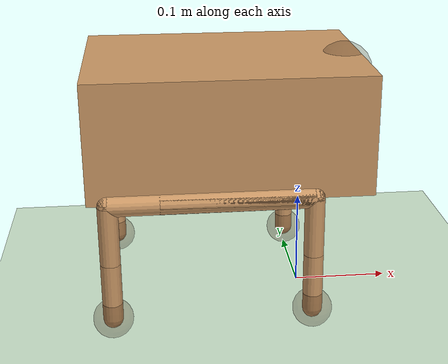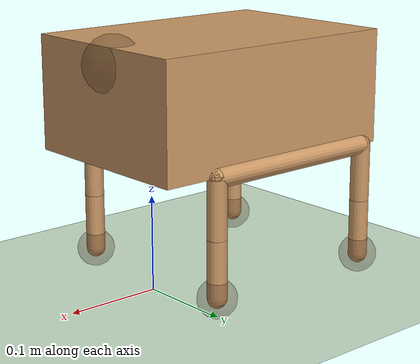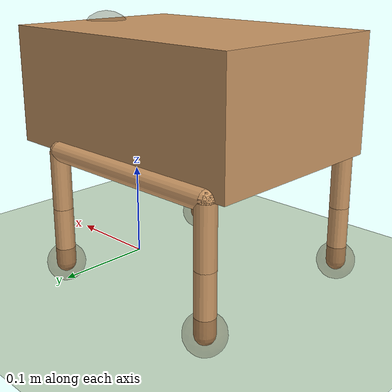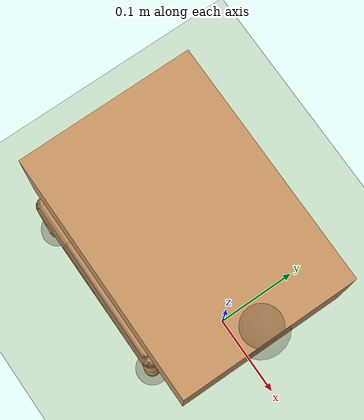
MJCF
<mujoco model="ant">
  <compiler angle="degree" coordinate="local" inertiafromgeom="true"/>
  <option integrator="RK4" timestep="0.01"/>
  <custom>
    <numeric data="0.0 0.0 0.55 1.0 0.0 0.0 0.0 0.0 1.0 0.0 -1.0 0.0 -1.0 0.0 1.0" name="init_qpos"/>
  </custom>
  <default>
    <joint armature="1" damping="1" limited="true"/>
    <geom conaffinity="0" condim="3" density="5.0" friction="1 0.5 0.5" margin="0.01" rgba="0.8 0.6 0.4 1"/>
  </default>
  <asset>
    <texture builtin="gradient" height="100" rgb1="1 1 1" rgb2="0 0 0" type="skybox" width="100"/>
    <texture builtin="flat" height="1278" mark="cross" markrgb="1 1 1" name="texgeom" random="0.01" rgb1="0.8 0.6 0.4" rgb2="0.8 0.6 0.4" type="cube" width="127"/>
    <texture builtin="checker" height="100" name="texplane" rgb1="0 0 0" rgb2="0.8 0.8 0.8" type="2d" width="100"/>
    <material name="MatPlane" reflectance="0.5" shininess="1" specular="1" texrepeat="60 60" texture="texplane"/>
    <material name="geom" texture="texgeom" texuniform="true"/>
  </asset>
  <worldbody>
    <light cutoff="100" diffuse="1 1 1" dir="-0 0 -1.3" directional="true" exponent="1" pos="0 0 1.3" specular=".1 .1 .1"/>
    <geom conaffinity="1" condim="3" material="MatPlane" name="floor" pos="0 0 0" rgba="0.8 0.9 0.8 1" size="40 40 40" type="plane" friction="1 0.01 0.01"/>
    <body name="torso" pos="0 0 0.24"  euler="0 0 -90">
      <camera name="track" mode="trackcom" pos="0 -3 0.3" xyaxes="1 0 0 0 0 1"/>
      <geom name="torso_geom" pos="0 -0.08 -0.04" mass="0.8" size="0.10 0.14 0.06" type="box"/>
      <joint armature="0" damping="0" limited="false" margin="0.01" name="root" pos="0 0 0" type="free"/>
      <!-- Adding new sensor -->
      <site name="gyrosensor" pos="0 0.045 0" size=".03 .03 .03" type="ellipsoid" rgba="0.3 0.2 0.1 0.3"/>
      <site name="accelsensor" pos="0 0.045 0" size=".03 .03 .03" type="ellipsoid" rgba="0.3 0.2 0.1 0.3"/>

      <body name="left_front_leg" pos="0.10 -0.20 -0.1" euler="0 0 0">
        <geom fromto="0.0 0.0 0.0 0.0 0.2 0.0" name="aux_1_geom" size="0.01" type="capsule" friction="1 0.01 0.01"/>
        <body name="aux_1" pos="0.0 0.2 0" euler="-90 0 0">
          <joint axis="1 0 0" name="hip_1" pos="0.0 0.0 0.0" range="-70 70" type="hinge" damping="5.0" frictionloss="0.5"/>
          <geom fromto="0.0 0.0 0.0 0.0 0.06 0.0" name="left_leg_geom" size="0.010" type="capsule" friction="1 0.01 0.01"/>
          <body name="left_front_foot" pos="0.0 0.06 0">
            <joint axis="1 0 0" name="ankle_1" pos="0.0 0.0 0.0" range="-70 70" type="hinge" damping="5.0" frictionloss="0.5"/>
            <geom fromto="0.0 0.0 0.0 0.0 0.06 0.0" name="left_ankle_geom" size="0.010" type="capsule" contype="0" friction="1 0.01 0.01"/>
            <geom name="left_front_foot_tip" type="sphere" pos = "0.0 0.06 0.0" size="0.02" rgba="0.3 0.2 0.1 0.3"/>
          </body>
        </body>
      </body>

      <body name="right_front_leg" pos="-0.1 -0.2 -0.1" euler="0 0 0">
        <geom fromto="0.0 0.0 0.0 0.0 0.2 0.0" name="aux_2_geom" size="0.01" type="capsule" friction="1 0.01 0.01"/>
        <body name="aux_2" pos="0.0 0.2 0" euler="-90 0 0">
          <joint axis="1 0 0" name="hip_2" pos="0.0 0.0 0.0" range="-70 70" type="hinge" damping="5.0" frictionloss="0.5"/>
          <geom fromto="0.0 0.0 0.0 0.0 0.06 0.0" name="right_leg_geom" size="0.010" type="capsule" friction="1 0.01 0.01"/>
          <body name="right_front_foot" pos="0.0 0.06 0">
            <joint axis="1 0 0" name="ankle_2" pos="0.0 0.0 0.0" range="-70 70" type="hinge" damping="5.0" frictionloss="0.5"/>
            <geom fromto="0.0 0.0 0.0 0.0 0.06 0.0" name="right_ankle_geom" size="0.010" type="capsule" contype="0" friction="1 0.01 0.01"/>
            <geom name="right_front_foot_tip" pos="0.0 0.06 0.0" size="0.02" type="sphere" rgba="0.3 0.2 0.1 0.3"/>
          </body>
        </body>
      </body>

      <body name="left_back_leg" pos="-0.1 0.0 -0.1" euler="180 0 0">
        <geom fromto="0.0 0.0 0.0 0.0 0.2 0.0" name="aux_3_geom" size="0.01" type="capsule" friction="1 0.01 0.01"/>
        <body name="aux_3" pos="0.0 0.2 0" euler="90 0 0">
          <joint axis="1 0 0" name="hip_3" pos="0.0 0.0 0.0" range="-70 70" type="hinge" damping="5.0" frictionloss="0.5" />
          <geom fromto="0.0 0.0 0.0 0.0 0.06 0.0" name="back_leg_geom" size="0.010" type="capsule" friction="1 0.01 0.01"/>
          <body name="left_back_foot" pos="0.0 0.06 0">
            <joint axis="1 0 0" name="ankle_3" pos="0.0 0.0 0.0" range="-70 70" type="hinge" damping="5.0" frictionloss="0.5"/>
            <geom fromto="0.0 0.0 0.0 0.0 0.06 0.0" name="third_ankle_geom" size="0.010" type="capsule" contype="0" friction="1 0.01 0.01"/>
            <geom name="left_back_foot_tip" pos="0.0 0.06 0.0" size="0.02" type="sphere" rgba="0.3 0.2 0.1 0.3"/>
          </body>
        </body>
      </body>
      <body name="right_back_leg" pos="0.1 0.0 -0.1" euler="180 0 0">
        <geom fromto="0.0 0.0 0.0 0.0 0.15 0.0" name="aux_4_geom" size="0.01" type="capsule" friction="1 0.01 0.01"/>
        <body name="aux_4" pos="0.0 0.2 0" euler="90 0 0">
          <joint axis="1 0 0" name="hip_4" pos="0.0 0.0 0.0" range="-70 70" type="hinge" damping="5.0" frictionloss="0.5"/>
          <geom fromto="0.0 0.0 0.0 0.0 0.06 0.0" name="rightback_leg_geom" size="0.010" type="capsule" friction="1 0.01 0.01"/>
          <body name="right_back_foot" pos="0.0 0.06 0">
            <joint axis="1 0 0" name="ankle_4" pos="0.0 0.0 0.0" range="-70 70" type="hinge" damping="5.0" frictionloss="0.5"/>
            <geom fromto="0.0 0.0 0.0 0.0 0.06 0.0" name="fourth_ankle_geom" size="0.010" type="capsule" contype="0" friction="1 0.01 0.01"/>
            <geom name="right_back_foot_tip" pos="0.0 0.06 0.0" size="0.02" type="sphere" rgba="0.3 0.2 0.1 0.3"/>
          </body>
        </body>
      </body>
    </body>
  </worldbody>
  <actuator>
    <position joint="hip_1" ctrllimited="true" ctrlrange="-1 1" gear="1" kp="10" forcelimited="true" forcerange="-100 100"/>
    <position joint="ankle_1" ctrllimited="true" ctrlrange="-1 1" gear="1" kp="10" forcelimited="true" forcerange="-100 100"/>
    <position joint="hip_2" ctrllimited="true" ctrlrange="-1 1" gear="1" kp="10" forcelimited="true" forcerange="-100 100"/>
    <position joint="ankle_2" ctrllimited="true" ctrlrange="-1 1" gear="1" kp="10" forcelimited="true" forcerange="-100 100"/>
    <position joint="hip_3" ctrllimited="true" ctrlrange="-1 1" gear="1" kp="10" forcelimited="true" forcerange="-100 100"/>
    <position joint="ankle_3" ctrllimited="true" ctrlrange="-1 1" gear="1" kp="10" forcelimited="true" forcerange="-100 100"/>
    <position joint="hip_4" ctrllimited="true" ctrlrange="-1 1" gear="1" kp="10" forcelimited="true" forcerange="-100 100"/>
    <position joint="ankle_4" ctrllimited="true" ctrlrange="-1 1" gear="1" kp="10" forcelimited="true" forcerange="-100 100"/>
  </actuator>
  <sensor>
     <gyro name="gyro" site="gyrosensor" />
     <accelerometer name="accel" site="accelsensor"/>
 </sensor>
</mujoco>
